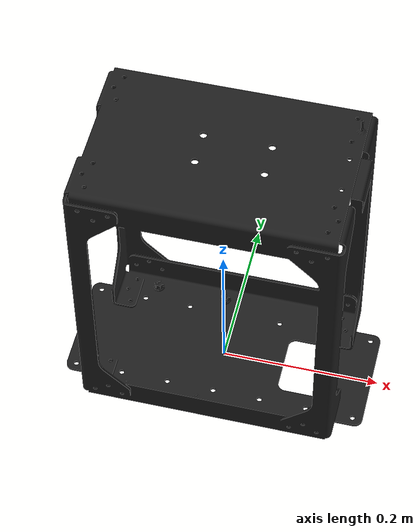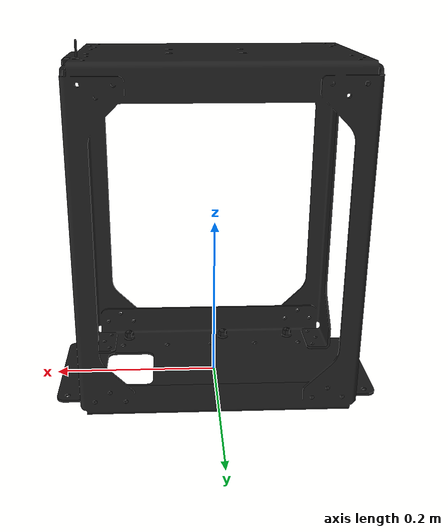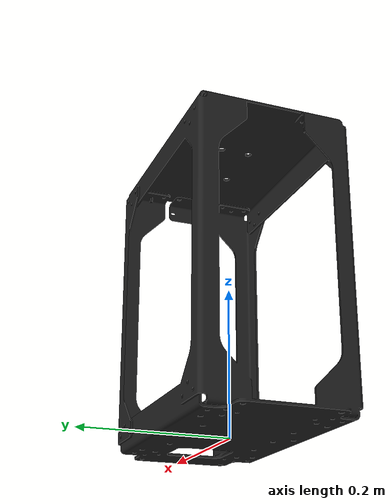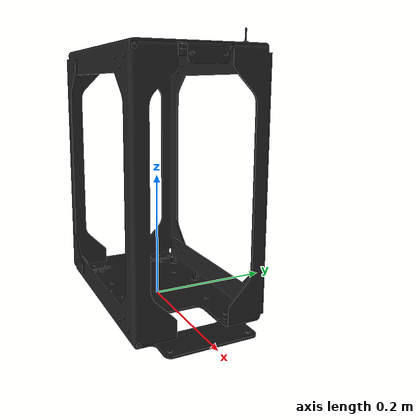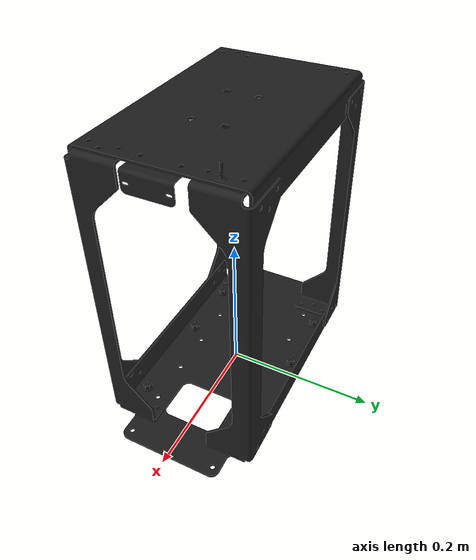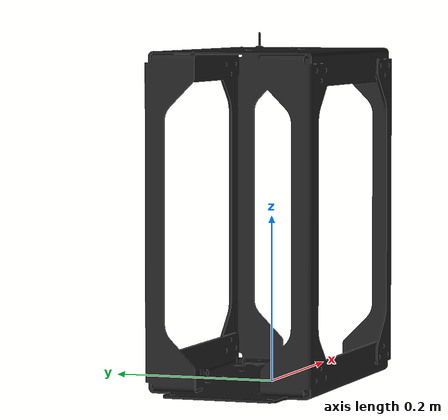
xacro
<?xml version="1.0"?>
<robot name="turret" xmlns:xacro="http://www.ros.org/wiki/xacro">

    <xacro:property name="mass" value="5.0" />

    <link name="turret_link">
        <visual>
            <geometry>
                <mesh filename="package://common_gazebo_models/meshes/turret/turret.dae" />
            </geometry>
        </visual>
        <collision>
            <origin xyz="0 0 0.2095" rpy="0 0 0" />
            <geometry>
                <box size="0.385 0.206 0.419" />
            </geometry>
        </collision>
    </link>

    <gazebo reference="turret_link">
        <material>Gazebo/FlatBlack</material>
    </gazebo>

    <link name="cameras_mount_link" />
    <link name="gen3_mount_link" />

    <joint name="turret_to_cameras_joint" type="fixed">
        <parent link="turret_link"></parent>
        <child link="cameras_mount_link"></child>
        <origin xyz="0.1659 0 0.3828" rpy="0 0 0" />
    </joint>

    <joint name="turret_to_gen3_joint" type="fixed">
        <parent link="turret_link"></parent>
        <child link="gen3_mount_link"></child>
        <origin xyz="0.0125 0 0.3984" rpy="0 0 0" />
    </joint>

</robot>
